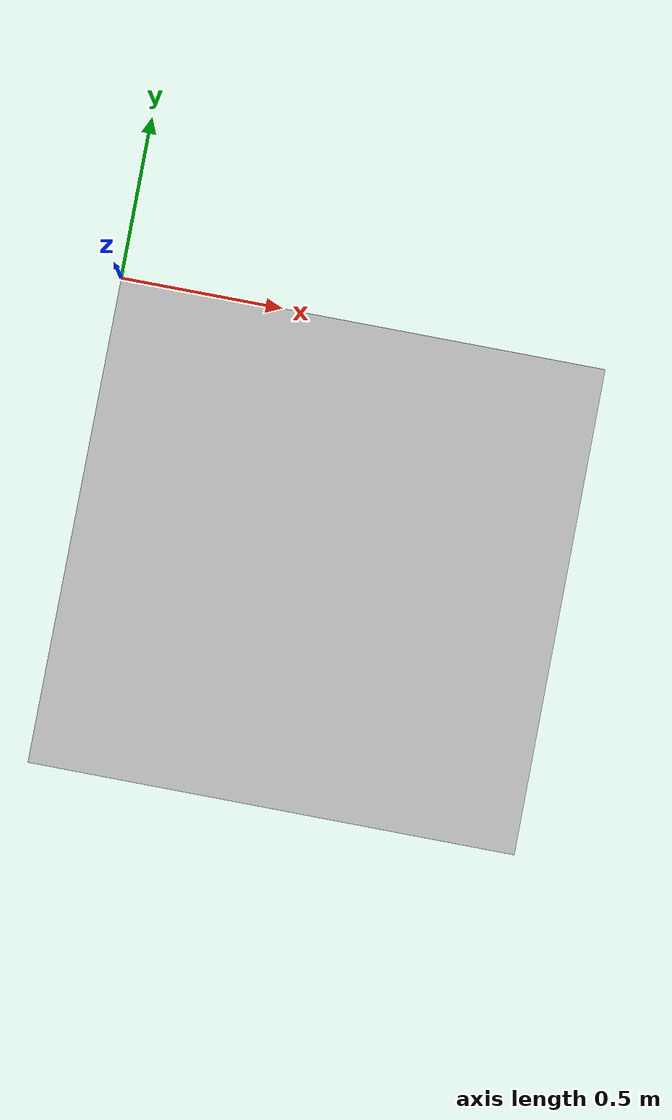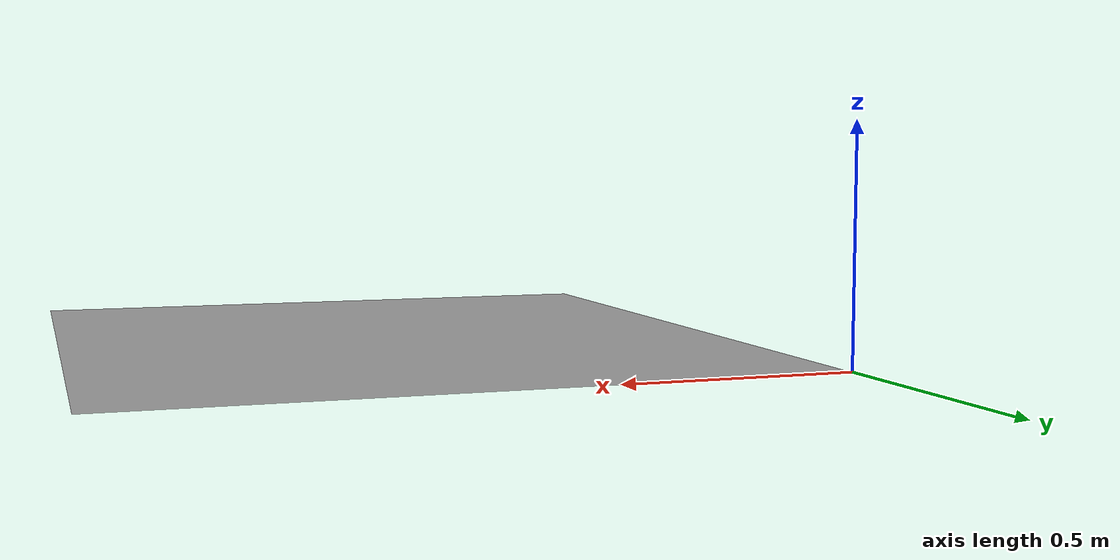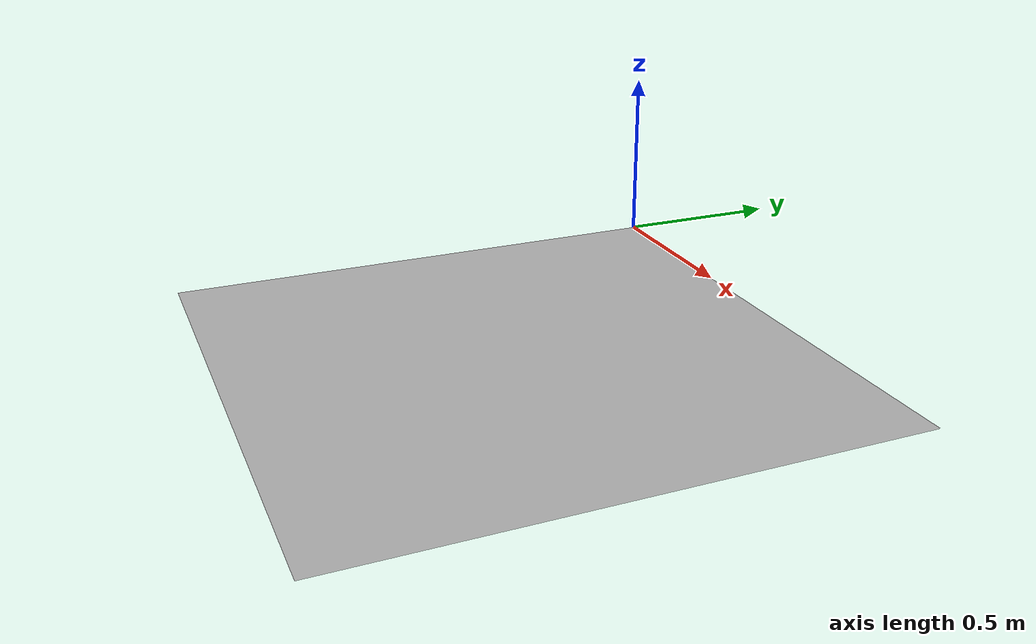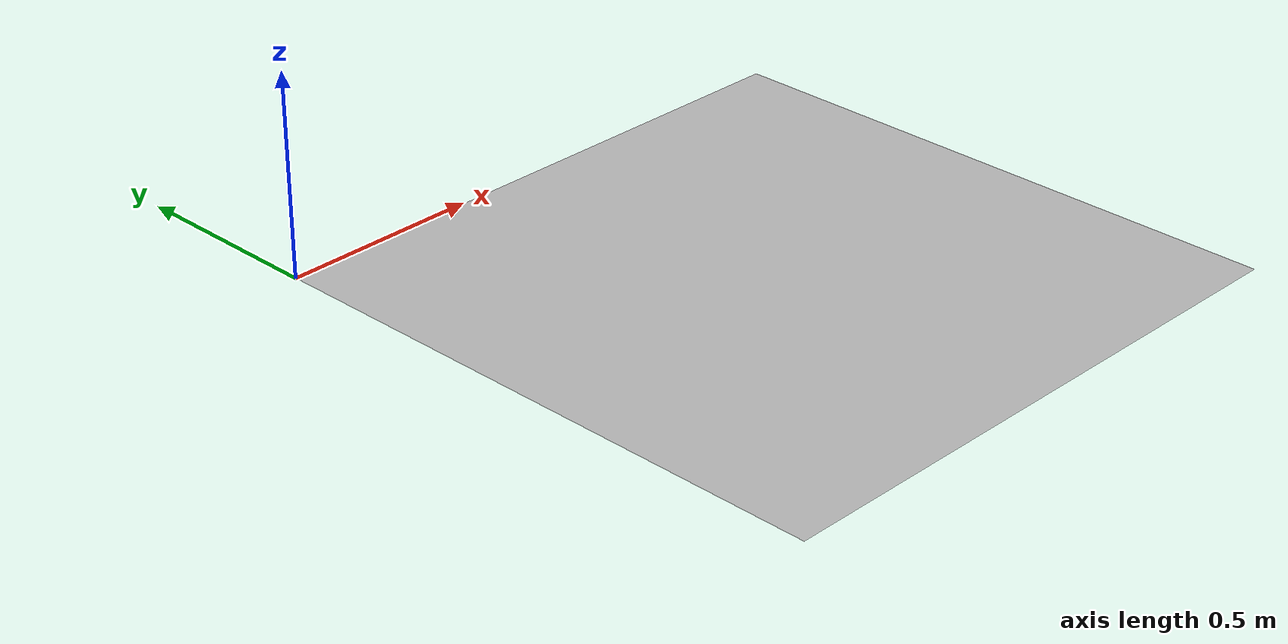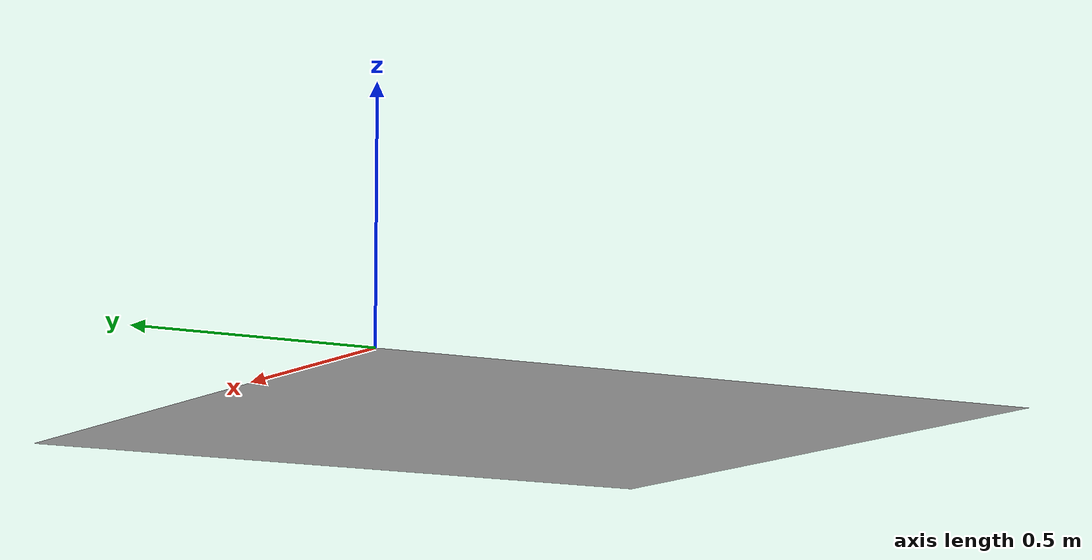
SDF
<?xml version="1.0" ?>
<sdf version="1.5">
  <model name="ceiling">
    <static>true</static>
    <link name="link">
      <collision name="collision">
        <geometry>
          <mesh>
            <uri>model://ceiling/meshes/ceiling.obj</uri>
            <scale>0.01 0.01 0.01</scale>
          </mesh>
        </geometry>
      </collision>
      <visual name="visual">
        <geometry>
          <mesh>
            <uri>model://ceiling/meshes/ceiling.obj</uri>
            <scale>0.01 0.01 0.01</scale>
          </mesh>
        </geometry>
      </visual>
    </link>
  </model>
</sdf>
